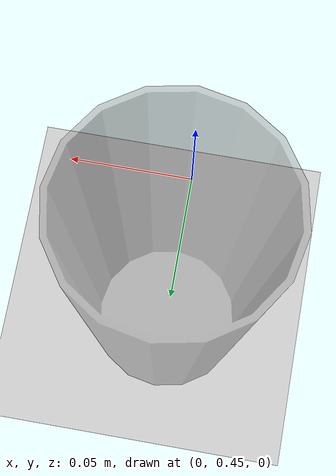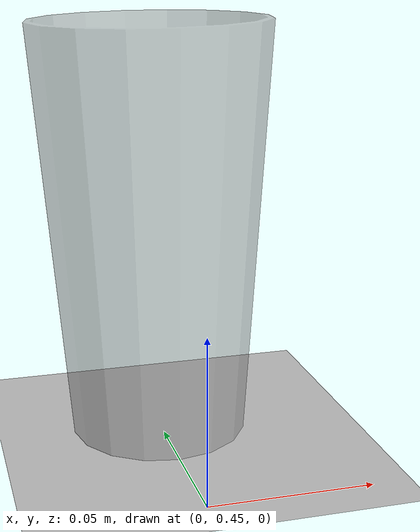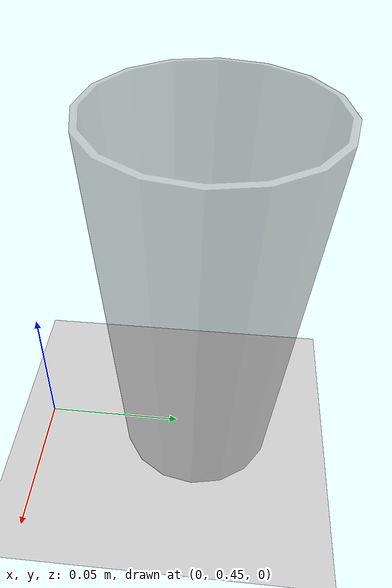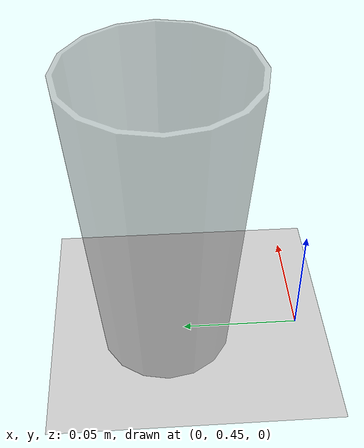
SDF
<sdf version="1.7">
 <world name="default">
  <light name="sun" type="directional">
   <pose>0 0 10 0 -0 0</pose>
   <diffuse>0.8 0.8 0.8 1</diffuse>
   <specular>0.2 0.2 0.2 1</specular>
   <attenuation>
    <range>1000</range>
    <constant>0.9</constant>
    <linear>0.01</linear>
    <quadratic>0.001</quadratic>
   </attenuation>
   <direction>-0.5 0.1 -0.9</direction>
   <spot><inner_angle>0</inner_angle><outer_angle>0</outer_angle><falloff>0</falloff></spot>
  </light>
  <model name="ground_plane">
   <static>1</static>
   <link name="link">
    <collision name="collision">
     <geometry><plane><normal>0 0 1</normal><size>100 100</size></plane></geometry>
     <surface><friction><ode><mu>100</mu><mu2>50</mu2></ode></friction></surface>
    </collision>
    <visual name="visual">
     <cast_shadows>0</cast_shadows>
     <geometry><plane><normal>0 0 1</normal><size>100 100</size></plane></geometry>
     <material>
      <script><uri>file://media/materials/scripts/gazebo.material</uri><name>Gazebo/Grey</name></script>
     </material>
    </visual>
   </link>
  </model>
  <gravity>0 0 -9.8</gravity>
  <magnetic_field>6e-06 2.3e-05 -4.2e-05</magnetic_field>
  <atmosphere type="adiabatic"/>
  <physics type="ode">
   <max_step_size>0.001</max_step_size>
   <real_time_factor>1</real_time_factor>
   <real_time_update_rate>1000</real_time_update_rate>
  </physics>
  <scene><ambient>0.4 0.4 0.4 1</ambient><background>0.7 0.7 0.7 1</background><shadows>1</shadows></scene>
  <spherical_coordinates>
   <surface_model>EARTH_WGS84</surface_model>
   <latitude_deg>0</latitude_deg>
   <longitude_deg>0</longitude_deg>
   <elevation>0</elevation>
   <heading_deg>0</heading_deg>
  </spherical_coordinates>
  <model name="plastic_cup">
   <link name="link">
    <pose>0 0 0.065 0 -0 0</pose>
    <inertial>
     <mass>0.0599</mass>
     <inertia>
      <ixx>0.000302896</ixx>
      <ixy>0</ixy>
      <ixz>0</ixz>
      <iyy>0.000302896</iyy>
      <iyz>0</iyz>
      <izz>3.28764e-05</izz>
     </inertia>
    </inertial>
    <collision name="collision">
     <geometry><mesh><uri>model://plastic_cup/meshes/plastic_cup.dae</uri></mesh></geometry>
     <surface>
      <contact>
       <poissons_ratio>0.35</poissons_ratio>
       <elastic_modulus>3.10264e+09</elastic_modulus>
       <ode><kp>100000</kp><kd>100</kd><max_vel>100</max_vel><min_depth>0.001</min_depth></ode>
      </contact>
      <friction>
       <torsional>
        <coefficient>1</coefficient>
        <use_patch_radius>0</use_patch_radius>
        <surface_radius>0.01</surface_radius>
       </torsional>
      </friction>
     </surface>
    </collision>
    <visual name="visual">
     <geometry><mesh><uri>model://plastic_cup/meshes/plastic_cup.dae</uri></mesh></geometry>
     <material>
      <script><uri>file://media/materials/scripts/gazebo.material</uri><name>Gazebo/GreyTransparent</name></script>
     </material>
    </visual>
   </link>
   <pose>0 0.5 0.007104 -0.000408 -0.012778 1.3e-05</pose>
  </model>
 </world>
</sdf>
